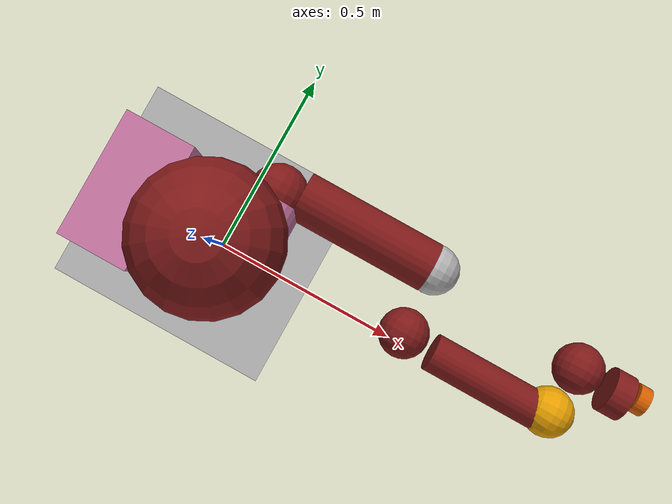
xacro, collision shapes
<?xml version="1.0"?>
<robot name="husky_sawyer" xmlns:xacro="http://ros.org/wiki/xacro">
  <xacro:include filename="$(find sawyer_gazebo)/urdf/sawyer.urdf.xacro" />
  <xacro:include filename="$(find sawyer_gazebo)/urdf/sawyer_stand.urdf.xacro" />
  <xacro:sawyer_robot real_mass="false"/>
  <xacro:sawyer_stand />
  <gazebo>
    <plugin name="gazebo_ros_control" filename="libgazebo_ros_control.so" />
  </gazebo>

</robot>

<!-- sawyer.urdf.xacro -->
<robot name="sawyer" xmlns:xacro="http://www.ros.org/wiki/xacro">
  <material name="black">
    <color rgba="0 0 0 1"/>
  </material>
  <material name="darkgray">
    <color rgba=".2 .2 .2 1"/>
  </material>
  <material name="darkred">
    <color rgba=".5 .1 .1 1"/>
  </material>
  <material name="sawyer_red">
    <color rgba=".5 .1 .1 1"/>
  </material>
  <material name="sawyer_gray">
    <color rgba="0.75294 0.75294 0.75294 1"/>
  </material>
  <xacro:include filename="$(find sawyer_gazebo)/urdf/sawyer.transmission.xacro" />

  <xacro:macro name="sawyer_robot" params="real_mass">
    <link name="right_arm_base_link">
      <inertial>
        <origin rpy="0 0 0" xyz="-0.0006241 -2.8025E-05 0.065404"/>
        <xacro:if value="${real_mass}">
          <mass value="2.0687"/>
        </xacro:if>
        <xacro:unless value="${real_mass}">
          <mass value="0.0001"/>
        </xacro:unless>
        <inertia ixx="0.0067599" ixy="-4.2024E-05" ixz="-6.1904E-07" iyy="0.0067877" iyz="1.5888E-05" izz="0.0074031"/>
      </inertial>
      <visual>
        <origin rpy="0 0 0" xyz="0 0 0"/>
        <geometry>
          <mesh filename="package://sawyer_description/meshes/sawyer_pv/base.DAE"/>
        </geometry>
        <material name="sawyer_red"/>
      </visual>
      <collision>
        <origin rpy="0 0 0" xyz="0 0 0.12"/>
        <geometry>
          <cylinder length="0.24" radius="0.08"/>
        </geometry>
      </collision>
    </link>
    <link name="right_l0">
      <inertial>
        <origin rpy="0 0 0" xyz="0.024366 0.010969 0.14363"/>
        <xacro:if value="${real_mass}">
          <mass value="5.3213"/>
        </xacro:if>
        <xacro:unless value="${real_mass}">
          <mass value="0.0001"/>
        </xacro:unless>
        <inertia ixx="0.053314" ixy="0.0047093" ixz="0.011734" iyy="0.057902" iyz="0.0080179" izz="0.023659"/>
      </inertial>
      <visual>
        <origin rpy="0 0 0" xyz="0 0 0"/>
        <geometry>
          <mesh filename="package://sawyer_description/meshes/sawyer_mp3/l0.DAE"/>
        </geometry>
        <material name="sawyer_red"/>
      </visual>
      <collision>
        <origin rpy="0 0 0" xyz="0.08 0 0.23"/>
        <geometry>
          <sphere radius="0.07"/>
        </geometry>
      </collision>
    </link>
    <joint name="right_j0" type="revolute">
      <origin rpy="0 0 0" xyz="0 0 0.08"/>
      <parent link="right_arm_base_link"/>
      <child link="right_l0"/>
      <axis xyz="0 0 1"/>
      <limit effort="80.0" lower="-3.0503" upper="3.0503" velocity="1.74"/>
    </joint>
    <link name="head">
      <inertial>
        <origin rpy="0 0 0" xyz="0.0053207 -2.6549E-05 0.1021"/>
        <xacro:if value="${real_mass}">
          <mass value="1.5795"/>
        </xacro:if>
        <xacro:unless value="${real_mass}">
          <mass value="0.0001"/>
        </xacro:unless>
        <inertia ixx="0.011833" ixy="-4.4669E-06" ixz="4.9425E-05" iyy="0.0082709" iyz="4.2124E-07" izz="0.0049661"/>
      </inertial>
      <visual>
        <origin rpy="0 0 0" xyz="0 0 0"/>
        <geometry>
          <mesh filename="package://sawyer_description/meshes/sawyer_pv/head.DAE"/>
        </geometry>
        <material name="sawyer_red"/>
      </visual>
      <collision>
        <origin rpy="0 0 0" xyz="0 0 0.08"/>
        <geometry>
          <sphere radius="0.18"/>
        </geometry>
      </collision>
    </link>
    <joint name="head_pan" type="revolute">
      <origin rpy="0 0 0" xyz="0 0 0.2965"/>
      <parent link="right_l0"/>
      <child link="head"/>
      <axis xyz="0 0 1"/>
      <limit effort="8" lower="-5.0952" upper="0.9064" velocity="1.8"/>
    </joint>
    <link name="right_torso_itb">
      <inertial>
        <origin rpy="0 0 0" xyz="0.000000 0.000000 0.000000"/>
        <mass value="0.0001"/>
        <inertia ixx="1e-08" ixy="0" ixz="0" iyy="1e-08" iyz="0" izz="1e-08"/>
      </inertial>
    </link>
    <joint name="right_torso_itb" type="fixed">
      <origin rpy="0 -1.57079632679 0" xyz="-.055 0 .22"/>
      <parent link="right_l0"/>
      <child link="right_torso_itb"/>
      <axis xyz="0 0 1"/>
    </joint>
    <link name="right_l1">
      <inertial>
        <origin rpy="0 0 0" xyz="-0.0030849 -0.026811 0.092521"/>
        <xacro:if value="${real_mass}">
          <mass value="4.505"/>
        </xacro:if>
        <xacro:unless value="${real_mass}">
          <mass value="0.0001"/>
        </xacro:unless>
        <inertia ixx="0.022398" ixy="-0.00023986" ixz="-0.00029362" iyy="0.014613" iyz="-0.0060875" izz="0.017295"/>
      </inertial>
      <visual>
        <origin rpy="0 0 0" xyz="0 0 0"/>
        <geometry>
          <mesh filename="package://sawyer_description/meshes/sawyer_mp3/l1.DAE"/>
        </geometry>
        <material name="sawyer_red"/>
      </visual>
      <collision>
        <origin rpy="0 0 0" xyz="0 0 0.1225"/>
        <geometry>
          <sphere radius="0.07"/>
        </geometry>
      </collision>
    </link>
    <joint name="right_j1" type="revolute">
      <origin rpy="-1.57079632679 1.57079632679 0" xyz="0.081 0.05 0.237"/>
      <parent link="right_l0"/>
      <child link="right_l1"/>
      <axis xyz="0 0 1"/>
      <limit effort="80.0" lower="-3.8095" upper="2.2736" velocity="1.328"/>
    </joint>
    <link name="right_l2">
      <inertial>
        <origin rpy="0 0 0" xyz="-0.00016044 -0.014967 0.13582"/>
        <xacro:if value="${real_mass}">
          <mass value="1.745"/>
        </xacro:if>
        <xacro:unless value="${real_mass}">
          <mass value="0.0001"/>
        </xacro:unless>
        <inertia ixx="0.025506" ixy="4.4101E-06" ixz="1.4955E-05" iyy="0.0253" iyz="-0.0033204" izz="0.0034179"/>
      </inertial>
      <visual>
        <origin rpy="0 0 0" xyz="0 0 0"/>
        <geometry>
          <mesh filename="package://sawyer_description/meshes/sawyer_pv/l2.DAE"/>
        </geometry>
        <material name="sawyer_red"/>
      </visual>
      <collision>
        <origin rpy="0 0 0" xyz="0 0 0.08"/>
        <geometry>
          <cylinder length="0.34" radius="0.06"/>
        </geometry>
      </collision>
    </link>
    <joint name="right_j2" type="revolute">
      <origin rpy="1.57079632679 0 0" xyz="0 -0.14 0.1425"/>
      <parent link="right_l1"/>
      <child link="right_l2"/>
      <axis xyz="0 0 1"/>
      <limit effort="40.0" lower="-3.0426" upper="3.0426" velocity="1.957"/>
    </joint>
    <link name="right_l3">
      <inertial>
        <origin rpy="0 0 0" xyz="-0.0048135 -0.0281 -0.084154"/>
        <xacro:if value="${real_mass}">
          <mass value="2.5097"/>
        </xacro:if>
        <xacro:unless value="${real_mass}">
          <mass value="0.0001"/>
        </xacro:unless>
        <inertia ixx="0.01016" ixy="-9.7452E-06" ixz="0.00026624" iyy="0.0065685" iyz="0.0030316" izz="0.0069078"/>
      </inertial>
      <visual>
        <origin rpy="0 0 0" xyz="0 0 0"/>
        <geometry>
          <mesh filename="package://sawyer_description/meshes/sawyer_pv/l3.DAE"/>
        </geometry>
        <material name="sawyer_red"/>
      </visual>
      <collision>
        <origin rpy="0 0 0" xyz="0 -0.01 -0.12"/>
        <geometry>
          <sphere radius="0.06"/>
        </geometry>
      </collision>
    </link>
    <joint name="right_j3" type="revolute">
      <origin rpy="-1.57079632679 0 0" xyz="0 -0.042 0.26"/>
      <parent link="right_l2"/>
      <child link="right_l3"/>
      <axis xyz="0 0 1"/>
      <limit effort="40.0" lower="-3.0439" upper="3.0439" velocity="1.957"/>
    </joint>
    <link name="right_l4">
      <inertial>
        <origin rpy="0 0 0" xyz="-0.0018844 0.0069001 0.1341"/>
        <xacro:if value="${real_mass}">
          <mass value="1.1136"/>
        </xacro:if>
        <xacro:unless value="${real_mass}">
          <mass value="0.0001"/>
        </xacro:unless>
        <inertia ixx="0.013557" ixy="1.8109E-05" ixz="0.00013523" iyy="0.013555" iyz="0.0010561" izz="0.0013658"/>
      </inertial>
      <visual>
        <origin rpy="0 0 0" xyz="0 0 0"/>
        <geometry>
          <mesh filename="package://sawyer_description/meshes/sawyer_pv/l4.DAE"/>
        </geometry>
        <material name="sawyer_red"/>
      </visual>
      <collision>
        <origin rpy="0 0 0" xyz="0 0 0.11"/>
        <geometry>
          <cylinder length="0.30" radius="0.045"/>
        </geometry>
      </collision>
    </link>
    <joint name="right_j4" type="revolute">
      <origin rpy="1.57079632679 0 0" xyz="0 -0.125 -0.1265"/>
      <parent link="right_l3"/>
      <child link="right_l4"/>
      <axis xyz="0 0 1"/>
      <limit effort="9.0" lower="-2.9761" upper="2.9761" velocity="3.485"/>
    </joint>
    <link name="right_arm_itb">
      <inertial>
        <origin rpy="0 0 0" xyz="0.000000 0.000000 0.000000"/>
        <mass value="0.0001"/>
        <inertia ixx="1e-08" ixy="0" ixz="0" iyy="1e-08" iyz="0" izz="1e-08"/>
      </inertial>
    </link>
    <joint name="right_arm_itb" type="fixed">
      <origin rpy="0 -1.57079632679 0" xyz="-.055 0 .075"/>
      <parent link="right_l4"/>
      <child link="right_arm_itb"/>
      <axis xyz="0 0 1"/>
    </joint>
    <link name="right_l5">
      <inertial>
        <origin rpy="0 0 0" xyz="0.0061133 -0.023697 0.076416"/>
        <xacro:if value="${real_mass}">
          <mass value="1.5625"/>
        </xacro:if>
        <xacro:unless value="${real_mass}">
          <mass value="0.0001"/>
        </xacro:unless>
        <inertia ixx="0.0047328" ixy="0.00011526" ixz="4.6269E-05" iyy="0.0029676" iyz="-0.0011557" izz="0.0031762"/>
      </inertial>
      <visual>
        <origin rpy="0 0 0" xyz="0 0 0"/>
        <geometry>
          <mesh filename="package://sawyer_description/meshes/sawyer_pv/l5.DAE"/>
        </geometry>
        <material name="sawyer_red"/>
      </visual>
      <collision>
        <origin rpy="0 0 0" xyz="0 0 0.1"/>
        <geometry>
          <sphere radius="0.06"/>
        </geometry>
      </collision>
    </link>
    <joint name="right_j5" type="revolute">
      <origin rpy="-1.57079632679 0 0" xyz="0 0.031 0.275"/>
      <parent link="right_l4"/>
      <child link="right_l5"/>
      <axis xyz="0 0 1"/>
      <limit effort="9.0" lower="-2.9761" upper="2.9761" velocity="3.485"/>
    </joint>
    <link name="right_hand_camera"/>
    <joint name="right_hand_camera" type="fixed">
      <origin rpy="0 1.57079632679 0" xyz="0.039552 -0.033 0.0695"/>
      <parent link="right_l5"/>
      <child link="right_hand_camera"/>
      <axis xyz="0 0 0"/>
    </joint>
    <link name="right_wrist"/>
    <joint name="right_wrist" type="fixed">
      <origin rpy="1.57079632679 0 0" xyz="0 0 0.10541"/>
      <parent link="right_l5"/>
      <child link="right_wrist"/>
      <axis xyz="0 0 0"/>
    </joint>
    <link name="right_l6">
      <inertial>
        <origin rpy="0 0 0" xyz="-8.0726E-06 0.0085838 -0.0049566"/>
        <xacro:if value="${real_mass}">
          <mass value="0.3292"/>
        </xacro:if>
        <xacro:unless value="${real_mass}">
          <mass value="0.0001"/>
        </xacro:unless>
        <inertia ixx="0.00031105" ixy="1.4771E-06" ixz="-3.7074E-07" iyy="0.00021549" iyz="-8.4533E-06" izz="0.00035976"/>
      </inertial>
      <visual>
        <origin rpy="0 0 0" xyz="0 0 0"/>
        <geometry>
          <mesh filename="package://sawyer_description/meshes/sawyer_mp1/l6.DAE"/>
        </geometry>
        <material name="sawyer_red"/>
      </visual>
      <collision>
        <origin rpy="0 0 0" xyz="0 0.015 -0.01"/>
        <geometry>
          <cylinder length="0.05" radius="0.055"/>
        </geometry>
      </collision>
    </link>
    <joint name="right_j6" type="revolute">
      <origin rpy="-1.57079632679 -0.17453 3.1416" xyz="0 -0.11 0.1053"/>
      <parent link="right_l5"/>
      <child link="right_l6"/>
      <axis xyz="0 0 1"/>
      <limit effort="9.0" lower="-4.7124" upper="4.7124" velocity="4.545"/>
    </joint>
    <link name="right_hand">
      <inertial>
        <origin rpy="0 0 0" xyz="1.0E-08 1.0E-08 1.0E-08"/>
        <mass value="1.0E-08"/>
        <inertia ixx="1.0E-08" ixy="1.0E-08" ixz="1.0E-08" iyy="1.0E-08" iyz="1.0E-08" izz="1.0E-08"/>
      </inertial>
      <collision>
        <origin rpy="0 0 0" xyz="0 0 0.02"/>
        <geometry>
          <cylinder length="0.03" radius="0.035"/>
        </geometry>
      </collision>
    </link>
    <joint name="right_hand" type="fixed">
      <origin rpy="0 0 1.570796" xyz="0 0 0.0245"/>
      <axis xyz="0 0 1"/>
      <parent link="right_l6"/>
      <child link="right_hand"/>
    </joint>
    <link name="right_l1_2">
      <inertial>
        <origin rpy="0 0 0" xyz="1.0E-08 1.0E-08 1.0E-08"/>
        <mass value="1.0E-08"/>
        <inertia ixx="1.0E-08" ixy="1.0E-08" ixz="1.0E-08" iyy="1.0E-08" iyz="1.0E-08" izz="1.0E-08"/>
      </inertial>
      <collision>
        <origin rpy="0 0 0" xyz="0 0 0.035"/>
        <geometry>
          <cylinder length="0.14" radius="0.07"/>
        </geometry>
      </collision>
    </link>
    <joint name="right_j1_2" type="fixed">
      <origin rpy="0 0 0" xyz="0 0 0"/>
      <parent link="right_l1"/>
      <child link="right_l1_2"/>
      <axis xyz="0 0 1"/>
    </joint>
    <link name="right_l2_2">
      <inertial>
        <origin rpy="0 0 0" xyz="1.0E-08 1.0E-08 1.0E-08"/>
        <mass value="1.0E-08"/>
        <inertia ixx="1.0E-08" ixy="1.0E-08" ixz="1.0E-08" iyy="1.0E-08" iyz="1.0E-08" izz="1.0E-08"/>
      </inertial>
      <collision>
        <origin rpy="0 0 0" xyz="0 0 0.26"/>
        <geometry>
          <sphere radius="0.06"/>
        </geometry>
      </collision>
    </link>
    <joint name="right_j2_2" type="fixed">
      <origin rpy="0 0 0" xyz="0 0 0"/>
      <parent link="right_l2"/>
      <child link="right_l2_2"/>
      <axis xyz="0 0 1"/>
    </joint>
    <link name="right_l4_2">
      <inertial>
        <origin rpy="0 0 0" xyz="1.0E-08 1.0E-08 1.0E-08"/>
        <mass value="1.0E-08"/>
        <inertia ixx="1.0E-08" ixy="1.0E-08" ixz="1.0E-08" iyy="1.0E-08" iyz="1.0E-08" izz="1.0E-08"/>
      </inertial>
      <collision>
        <origin rpy="0 0 0" xyz="0 0.01 0.26"/>
        <geometry>
          <sphere radius="0.06"/>
        </geometry>
      </collision>
    </link>
    <joint name="right_j4_2" type="fixed">
      <origin rpy="0 0 0" xyz="0 0 0"/>
      <parent link="right_l4"/>
      <child link="right_l4_2"/>
      <axis xyz="0 0 1"/>
    </joint>
    <link name="screen">
      <visual>
        <origin rpy="0 0 0" xyz="0 0 0"/>
        <geometry>
          <box size="0.24 0.14 0.002"/>
        </geometry>
        <material name="darkgray"/>
      </visual>
      <collision>
        <origin rpy="0 0 0" xyz="0 0 0"/>
        <geometry>
          <sphere radius="0.001"/>
        </geometry>
      </collision>
      <inertial>
        <origin rpy="0 0 0" xyz="0 0 0"/>
        <mass value="0.0001"/>
        <inertia ixx="1e-08" ixy="0" ixz="0" iyy="1e-08" iyz="0" izz="1e-08"/>
      </inertial>
    </link>
    <joint name="display_joint" type="fixed">
      <origin rpy="1.57079632679 0 1.57079632679" xyz="0.03 0.0 0.105"/>
      <parent link="head"/>
      <child link="screen"/>
    </joint>
    <link name="head_camera"/>
    <joint name="head_camera" type="fixed">
      <origin rpy="-2.1293 0 -1.57079632679" xyz="0.0228027 0 0.216572"/>
      <parent link="head"/>
      <child link="head_camera"/>
      <axis xyz="0 0 0"/>
    </joint>
    <xacro:sawyer_arm_transmission />

  </xacro:macro>
</robot>

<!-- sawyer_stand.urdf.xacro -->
<robot name="sawyer_stand" xmlns:xacro="http://www.ros.org/wiki/xacro">
  <xacro:macro name="sawyer_stand">
    <link name="base"/>
    <link name="torso">
      <visual>
        <origin rpy="0 0 0" xyz="0 0 0"/>
        <geometry>
          <box size="0 0 0"/>
        </geometry>
        <material name="darkgray">
          <color rgba=".2 .2 .2 1"/>
        </material>
      </visual>
      <inertial>
        <origin rpy="0 0 0" xyz="0.000000 0.000000 0.000000"/>
        <mass value="0.0001"/>
        <inertia ixx="1e-08" ixy="0" ixz="0" iyy="1e-08" iyz="0" izz="1e-08"/>
      </inertial>
    </link>
    <link name="pedestal">
      <visual>
        <origin rpy="1.57079632679 0 -1.57079632679" xyz="0.26 0.345 -0.91488"/>
        <geometry>
          <mesh filename="package://sawyer_description/meshes/sawyer_pv/pedestal.DAE"/>
        </geometry>
        <material name="darkgray"/>
      </visual>
      <collision>
        <origin rpy="0 0 0" xyz="-0.02 0 -0.29"/>
        <geometry>
          <cylinder length="0.62" radius="0.18"/>
        </geometry>
      </collision>
      <inertial>
        <origin rpy="0 0 0" xyz="0 0 0"/>
        <mass value="60.86397744"/>
        <inertia ixx="5.0635929" ixy="0.00103417" ixz="0.80199628" iyy="6.08689388" iyz="0.00105311" izz="4.96191932"/>
      </inertial>
    </link>
    <link name="controller_box">
      <collision>
        <origin rpy="0 0 0" xyz="-0.325 0 -0.38"/>
        <geometry>
          <box size="0.22 0.4 0.53"/>
        </geometry>
      </collision>
    </link>
    <joint name="controller_box_fixed" type="fixed">
      <origin rpy="0 0 0" xyz="0.0 0.0 0.0"/>
      <parent link="base"/>
      <child link="controller_box"/>
    </joint>
    <link name="pedestal_feet">
      <collision>
        <origin rpy="0 0 0" xyz="-0.1225 0 -0.758"/>
        <geometry>
          <box size="0.77 0.7 0.31"/>
        </geometry>
      </collision>
    </link>
    <joint name="pedestal_feet_fixed" type="fixed">
      <origin rpy="0 0 0" xyz="0.0 0.0 0.0"/>
      <parent link="base"/>
      <child link="pedestal_feet"/>
    </joint>
    <joint name="torso_t0" type="fixed">
      <origin rpy="0 0 0" xyz="0 0 0"/>
      <parent link="base"/>
      <child link="torso"/>
    </joint>
    <joint name="pedestal_fixed" type="fixed">
      <origin rpy="0 0 0" xyz="0.0 0.0 0.0"/>
      <parent link="base"/>
      <child link="pedestal"/>
    </joint>
    <joint name="right_arm_mount" type="fixed">
      <origin rpy="0 0 0" xyz="0.0 0.0 0.0"/>
      <parent link="base"/>
      <child link="right_arm_base_link"/>
    </joint>
  </xacro:macro>
</robot>
